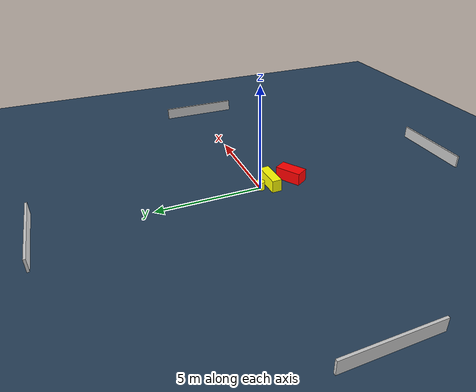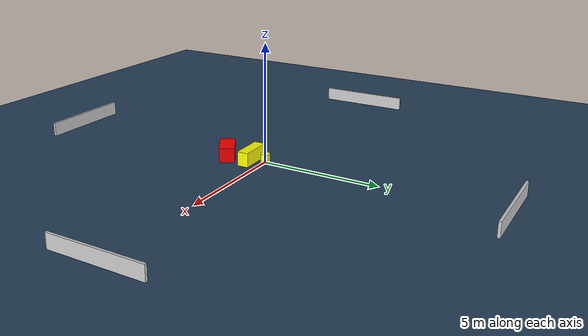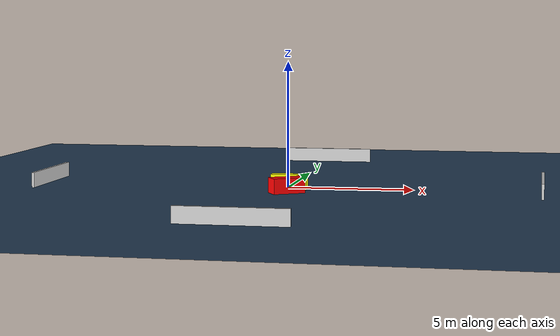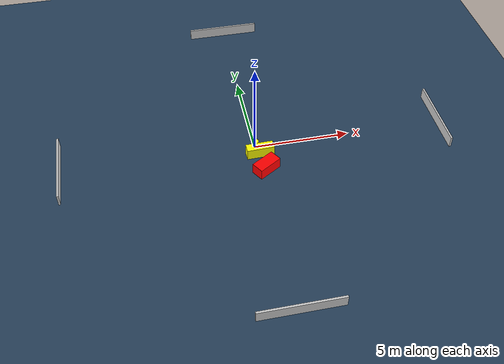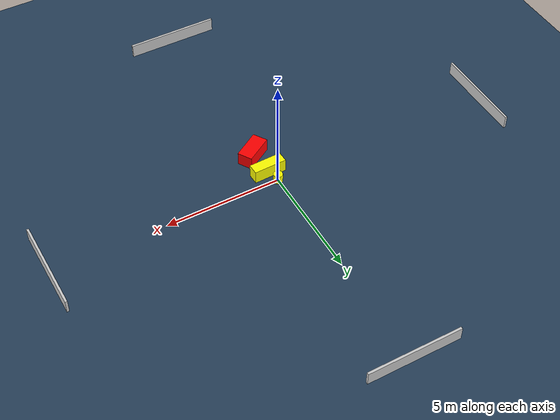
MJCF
<?xml version="1.0" ?>
<mujoco model="generated_environment">
  <option timestep="0.01" integrator="RK4" cone="elliptic"/>
  <default>
    <geom density="1"/>
  </default>
  <asset>
    <texture builtin="gradient" height="3072" name="skybox" rgb1="0.3 0.5 0.7" rgb2="0 0 0" type="skybox" width="512"/>
    <texture builtin="checker" height="300" name="groundplane" rgb1="0.2 0.3 0.4" rgb2="0.1 0.2 0.3" type="2d" width="300"/>
    <material name="groundplane" reflectance="0.2" texrepeat="5 5" texture="groundplane"/>
  </asset>
  <worldbody>
    <light dir="0 0 -1" directional="true" pos="0 0 1.5"/>
    <geom condim="3" friction="0.5 0.005 0.001" material="groundplane" name="floor" pos="0 0 0" size="0 0 0.05" type="plane"/>
    <body name="walls">
      <geom name="wall_1" condim="4" pos="-10.0 0.0 0.3" rgba="0.800000011920929 0.800000011920929 0.800000011920929 1.0" size="0.05 2.0 0.3" type="box"/>
      <geom name="wall_2" condim="4" pos="10.0 0.0 0.3" rgba="0.800000011920929 0.800000011920929 0.800000011920929 1.0" size="0.05 2.0 0.3" type="box"/>
      <geom name="wall_3" condim="4" pos="0.0 -10.0 0.3" rgba="0.800000011920929 0.800000011920929 0.800000011920929 1.0" size="2.0 0.05 0.3" type="box"/>
      <geom name="wall_4" condim="4" pos="0.0 10.0 0.3" rgba="0.800000011920929 0.800000011920929 0.800000011920929 1.0" size="2.0 0.05 0.3" type="box"/>
    </body>
    <body name="robot">
      <joint name="joint_x" type="slide" pos="0 0 0" axis="1 0 0"/>
      <joint name="joint_y" type="slide" pos="0 0 0" axis="0 1 0"/>
      <geom name="robot" type="cylinder" pos="0.0 0.0 0.2" size="0.2 0.2 0.0" mass="5.0" friction="1.0 0.005 0.0001" condim="4" rgba="1.0 1.0 0.0 1.0"/>
    </body>
    <body name="obstacle_1_movable">
      <geom name="obstacle_1_movable" condim="4" pos="0.15630921020425823 -0.5827597725116903 0.3" euler="0 0 91.62106958667289" friction="0.0 0.005 0.001" rgba="1.0 1.0 0.0 1.0" size="0.23505700545688396 0.71009477092593 0.3" type="box" mass="0.1"/>
      <joint type="free"/>
    </body>
    <body name="obstacle_2_static">
      <geom name="obstacle_2_static" condim="4" pos="0.25822694978845545 -1.7100506541906477 0.3" euler="0 0 31.74559860978156" friction="0.0 0.005 0.001" rgba="1.0 0.0 0.0 1.0" size="0.6419623835657788 0.3249104942344176 0.3" type="box"/>
    </body>
  </worldbody>
  <actuator>
    <motor name="actuator_x" joint="joint_x" gear="1" ctrlrange="-1 1"/>
    <motor name="actuator_y" joint="joint_y" gear="1" ctrlrange="-1 1"/>
  </actuator>
</mujoco>
